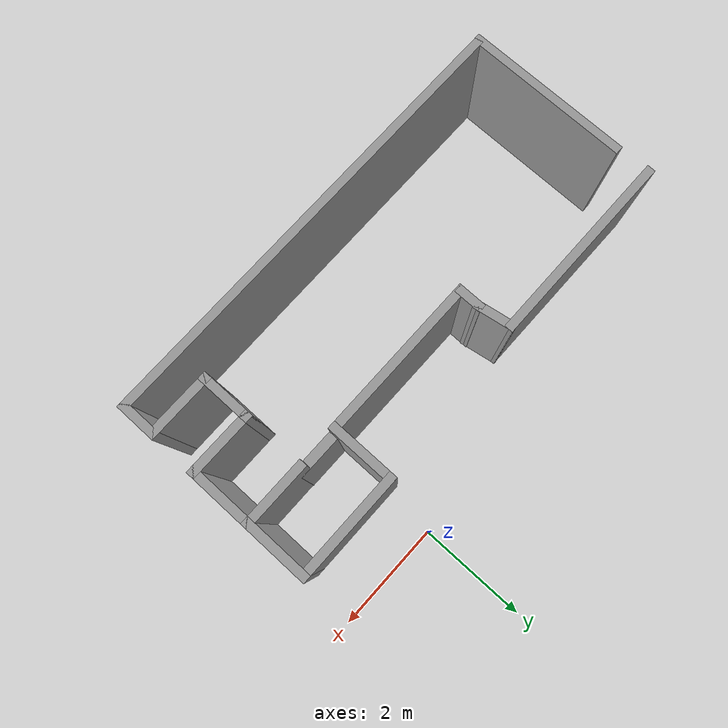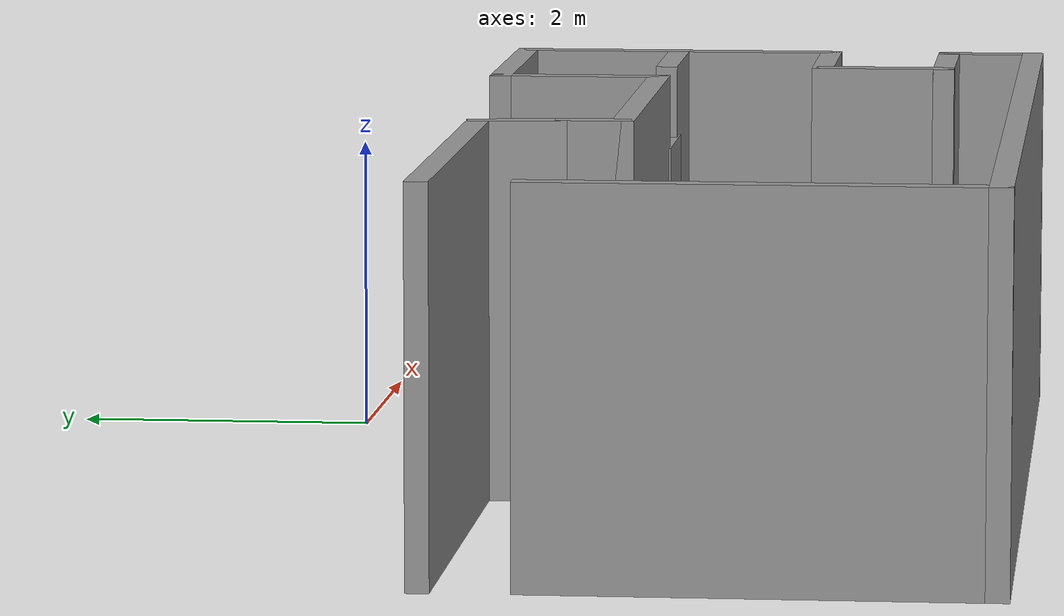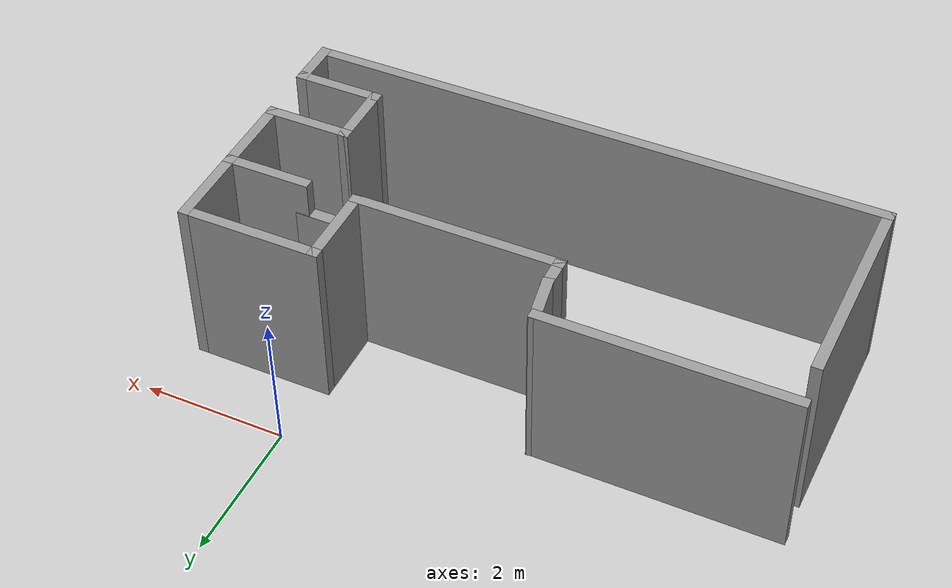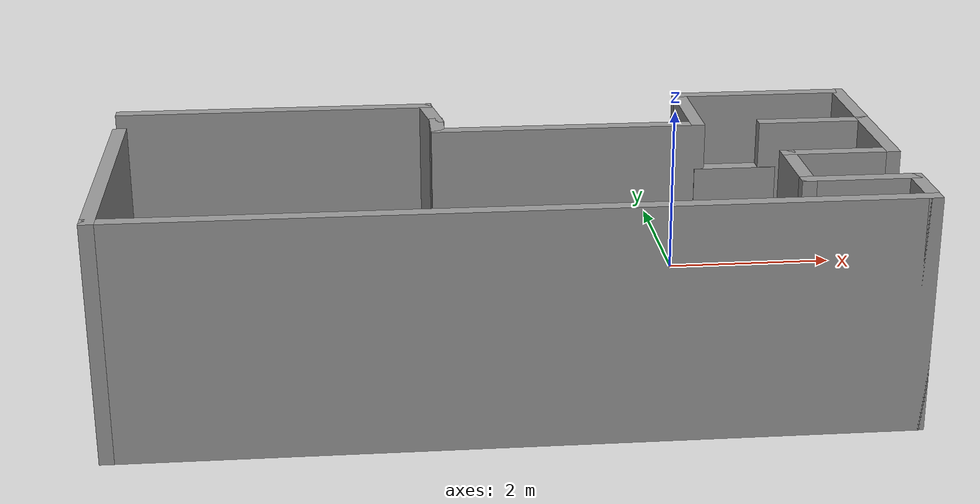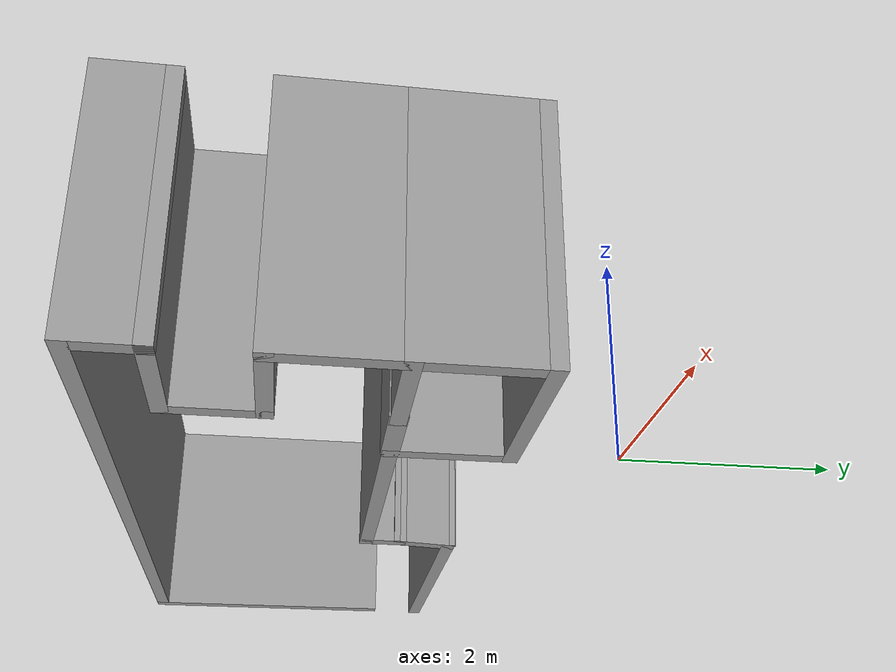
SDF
<?xml version='1.0'?>
<sdf version='1.6'>
  <model name='building'>
    <pose frame=''>-2.35769 -2.79793 0 0 -0 0</pose>
    <link name='Door_0'>
      <collision name='Door_0_Collision'>
        <geometry>
          <box>
            <size>0.9 0.17 2</size>
          </box>
        </geometry>
        <pose frame=''>0 0 1 0 -0 0</pose>
      </collision>
      <visual name='Door_0_Visual'>
        <pose frame=''>0 0 1 0 -0 0</pose>
        <geometry>
          <box>
            <size>0.9 0.17 2</size>
          </box>
        </geometry>
        <material>
          <script>
            <uri>file://media/materials/scripts/gazebo.material</uri>
            <name>Gazebo/Grey</name>
          </script>
        </material>
      </visual>
      <pose frame=''>2.63389 0.723243 0 0 -0 0</pose>
    </link>
    <link name='Wall_13'>
      <collision name='Wall_13_Collision'>
        <geometry>
          <box>
            <size>3 0.15 2.5</size>
          </box>
        </geometry>
        <pose frame=''>0 0 1.25 0 -0 0</pose>
      </collision>
      <visual name='Wall_13_Visual'>
        <pose frame=''>0 0 1.25 0 -0 0</pose>
        <geometry>
          <box>
            <size>3 0.15 2.5</size>
          </box>
        </geometry>
        <material>
          <script>
            <uri>file://media/materials/scripts/gazebo.material</uri>
            <name>Gazebo/Grey</name>
          </script>
          <ambient>1 1 1 1</ambient>
        </material>
        <meta>
          <layer>0</layer>
        </meta>
      </visual>
      <pose frame=''>-4.03711 -0.4 0 0 -0 1.5708</pose>
    </link>
    <link name='Wall_15'>
      <collision name='Wall_15_Collision'>
        <geometry>
          <box>
            <size>8.25 0.15 2.5</size>
          </box>
        </geometry>
        <pose frame=''>0 0 1.25 0 -0 0</pose>
      </collision>
      <visual name='Wall_15_Visual'>
        <pose frame=''>0 0 1.25 0 -0 0</pose>
        <geometry>
          <box>
            <size>8.25 0.15 2.5</size>
          </box>
        </geometry>
        <material>
          <script>
            <uri>file://media/materials/scripts/gazebo.material</uri>
            <name>Gazebo/Grey</name>
          </script>
          <ambient>1 1 1 1</ambient>
        </material>
        <meta>
          <layer>0</layer>
        </meta>
      </visual>
      <pose frame=''>0.012886 -1.825 0 0 -0 0</pose>
    </link>
    <link name='Wall_16'>
      <collision name='Wall_16_Collision'>
        <geometry>
          <box>
            <size>0.75 0.15 2.5</size>
          </box>
        </geometry>
        <pose frame=''>0 0 1.25 0 -0 0</pose>
      </collision>
      <visual name='Wall_16_Visual'>
        <pose frame=''>0 0 1.25 0 -0 0</pose>
        <geometry>
          <box>
            <size>0.75 0.15 2.5</size>
          </box>
        </geometry>
        <material>
          <script>
            <uri>file://media/materials/scripts/gazebo.material</uri>
            <name>Gazebo/Grey</name>
          </script>
          <ambient>1 1 1 1</ambient>
        </material>
        <meta>
          <layer>0</layer>
        </meta>
      </visual>
      <pose frame=''>4.06289 -1.525 0 0 -0 1.5708</pose>
    </link>
    <link name='Wall_17'>
      <collision name='Wall_17_Collision'>
        <geometry>
          <box>
            <size>1.25 0.15 2.5</size>
          </box>
        </geometry>
        <pose frame=''>0 0 1.25 0 -0 0</pose>
      </collision>
      <visual name='Wall_17_Visual'>
        <pose frame=''>0 0 1.25 0 -0 0</pose>
        <geometry>
          <box>
            <size>1.25 0.15 2.5</size>
          </box>
        </geometry>
        <material>
          <script>
            <uri>file://media/materials/scripts/gazebo.material</uri>
            <name>Gazebo/Grey</name>
          </script>
          <ambient>1 1 1 1</ambient>
        </material>
        <meta>
          <layer>0</layer>
        </meta>
      </visual>
      <pose frame=''>3.51289 -1.225 0 0 -0 3.14159</pose>
    </link>
    <link name='Wall_18'>
      <collision name='Wall_18_Collision'>
        <geometry>
          <box>
            <size>1 0.15 2.5</size>
          </box>
        </geometry>
        <pose frame=''>0 0 1.25 0 -0 0</pose>
      </collision>
      <visual name='Wall_18_Visual'>
        <pose frame=''>0 0 1.25 0 -0 0</pose>
        <geometry>
          <box>
            <size>1 0.15 2.5</size>
          </box>
        </geometry>
        <material>
          <script>
            <uri>file://media/materials/scripts/gazebo.material</uri>
            <name>Gazebo/Grey</name>
          </script>
          <ambient>1 1 1 1</ambient>
        </material>
        <meta>
          <layer>0</layer>
        </meta>
      </visual>
      <pose frame=''>2.96289 -0.8 0 0 -0 1.5708</pose>
    </link>
    <link name='Wall_19'>
      <collision name='Wall_19_Collision'>
        <geometry>
          <box>
            <size>1.25 0.15 2.5</size>
          </box>
        </geometry>
        <pose frame=''>0 0 1.25 0 -0 0</pose>
      </collision>
      <visual name='Wall_19_Visual'>
        <pose frame=''>0 0 1.25 0 -0 0</pose>
        <geometry>
          <box>
            <size>1.25 0.15 2.5</size>
          </box>
        </geometry>
        <material>
          <script>
            <uri>file://media/materials/scripts/gazebo.material</uri>
            <name>Gazebo/Grey</name>
          </script>
          <ambient>1 1 1 1</ambient>
        </material>
        <meta>
          <layer>0</layer>
        </meta>
      </visual>
      <pose frame=''>3.51289 -0.375 0 0 -0 0</pose>
    </link>
    <link name='Wall_20'>
      <collision name='Wall_20_Collision'>
        <geometry>
          <box>
            <size>1.25 0.15 2.5</size>
          </box>
        </geometry>
        <pose frame=''>0 0 1.25 0 -0 0</pose>
      </collision>
      <visual name='Wall_20_Visual'>
        <pose frame=''>0 0 1.25 0 -0 0</pose>
        <geometry>
          <box>
            <size>1.25 0.15 2.5</size>
          </box>
        </geometry>
        <material>
          <script>
            <uri>file://media/materials/scripts/gazebo.material</uri>
            <name>Gazebo/Grey</name>
          </script>
          <ambient>1 1 1 1</ambient>
        </material>
        <meta>
          <layer>0</layer>
        </meta>
      </visual>
      <pose frame=''>4.06289 0.175 0 0 -0 1.5708</pose>
    </link>
    <link name='Wall_21'>
      <collision name='Wall_21_Collision'>
        <geometry>
          <box>
            <size>1.25 0.15 2.5</size>
          </box>
        </geometry>
        <pose frame=''>0 0 1.25 0 -0 0</pose>
      </collision>
      <visual name='Wall_21_Visual'>
        <pose frame=''>0 0 1.25 0 -0 0</pose>
        <geometry>
          <box>
            <size>1.25 0.15 2.5</size>
          </box>
        </geometry>
        <material>
          <script>
            <uri>file://media/materials/scripts/gazebo.material</uri>
            <name>Gazebo/Grey</name>
          </script>
          <ambient>1 1 1 1</ambient>
        </material>
        <meta>
          <layer>0</layer>
        </meta>
      </visual>
      <pose frame=''>3.51289 0.725 0 0 -0 3.14159</pose>
    </link>
    <link name='Wall_24'>
      <collision name='Wall_24_Collision'>
        <geometry>
          <box>
            <size>0.15 0.15 2.5</size>
          </box>
        </geometry>
        <pose frame=''>0 0 1.25 0 -0 0</pose>
      </collision>
      <visual name='Wall_24_Visual'>
        <pose frame=''>0 0 1.25 0 -0 0</pose>
        <geometry>
          <box>
            <size>0.15 0.15 2.5</size>
          </box>
        </geometry>
        <material>
          <script>
            <uri>file://media/materials/scripts/gazebo.material</uri>
            <name>Gazebo/Grey</name>
          </script>
          <ambient>1 1 1 1</ambient>
        </material>
        <meta>
          <layer>0</layer>
        </meta>
      </visual>
      <pose frame=''>4.06289 0.725 0 0 -0 0</pose>
    </link>
    <link name='Wall_25'>
      <collision name='Wall_25_Collision'>
        <geometry>
          <box>
            <size>1.25 0.15 2.5</size>
          </box>
        </geometry>
        <pose frame=''>0 0 1.25 0 -0 0</pose>
      </collision>
      <visual name='Wall_25_Visual'>
        <pose frame=''>0 0 1.25 0 -0 0</pose>
        <geometry>
          <box>
            <size>1.25 0.15 2.5</size>
          </box>
        </geometry>
        <material>
          <script>
            <uri>file://media/materials/scripts/gazebo.material</uri>
            <name>Gazebo/Grey</name>
          </script>
          <ambient>1 1 1 1</ambient>
        </material>
        <meta>
          <layer>0</layer>
        </meta>
      </visual>
      <pose frame=''>4.06289 1.275 0 0 -0 1.5708</pose>
    </link>
    <link name='Wall_27'>
      <collision name='Wall_27_Collision'>
        <geometry>
          <box>
            <size>2 0.15 2.5</size>
          </box>
        </geometry>
        <pose frame=''>0 0 1.25 0 -0 0</pose>
      </collision>
      <visual name='Wall_27_Visual'>
        <pose frame=''>0 0 1.25 0 -0 0</pose>
        <geometry>
          <box>
            <size>2 0.15 2.5</size>
          </box>
        </geometry>
        <material>
          <script>
            <uri>file://media/materials/scripts/gazebo.material</uri>
            <name>Gazebo/Grey</name>
          </script>
          <ambient>1 1 1 1</ambient>
        </material>
        <meta>
          <layer>0</layer>
        </meta>
      </visual>
      <pose frame=''>3.13789 1.825 0 0 -0 3.14159</pose>
    </link>
    <link name='Wall_28'>
      <collision name='Wall_28_Collision'>
        <geometry>
          <box>
            <size>1.25 0.15 2.5</size>
          </box>
        </geometry>
        <pose frame=''>0 0 1.25 0 -0 0</pose>
      </collision>
      <visual name='Wall_28_Visual'>
        <pose frame=''>0 0 1.25 0 -0 0</pose>
        <geometry>
          <box>
            <size>1.25 0.15 2.5</size>
          </box>
        </geometry>
        <material>
          <script>
            <uri>file://media/materials/scripts/gazebo.material</uri>
            <name>Gazebo/Grey</name>
          </script>
          <ambient>1 1 1 1</ambient>
        </material>
        <meta>
          <layer>0</layer>
        </meta>
      </visual>
      <pose frame=''>2.21289 1.275 0 0 0 -1.5708</pose>
    </link>
    <link name='Wall_29'>
      <collision name='Wall_29_Collision'>
        <geometry>
          <box>
            <size>2.97989 0.15 2.5</size>
          </box>
        </geometry>
        <pose frame=''>0 0 1.25 0 -0 0</pose>
      </collision>
      <visual name='Wall_29_Visual'>
        <pose frame=''>0 0 1.25 0 -0 0</pose>
        <geometry>
          <box>
            <size>2.97989 0.15 2.5</size>
          </box>
        </geometry>
        <material>
          <script>
            <uri>file://media/materials/scripts/gazebo.material</uri>
            <name>Gazebo/Grey</name>
          </script>
          <ambient>1 1 1 1</ambient>
        </material>
        <meta>
          <layer>0</layer>
        </meta>
      </visual>
      <pose frame=''>0.797943 0.725 0 0 -0 3.14159</pose>
    </link>
    <link name='Wall_30'>
      <collision name='Wall_30_Collision'>
        <geometry>
          <box>
            <size>0.5 0.15 2.5</size>
          </box>
        </geometry>
        <pose frame=''>0 0 1.25 0 -0 0</pose>
      </collision>
      <visual name='Wall_30_Visual'>
        <pose frame=''>0 0 1.25 0 -0 0</pose>
        <geometry>
          <box>
            <size>0.5 0.15 2.5</size>
          </box>
        </geometry>
        <material>
          <script>
            <uri>file://media/materials/scripts/gazebo.material</uri>
            <name>Gazebo/Grey</name>
          </script>
          <ambient>1 1 1 1</ambient>
        </material>
        <meta>
          <layer>0</layer>
        </meta>
      </visual>
      <pose frame=''>-0.617001 0.920114 0 0 -0 1.5708</pose>
    </link>
    <link name='Wall_32'>
      <collision name='Wall_32_Collision'>
        <geometry>
          <box>
            <size>3.5 0.15 2.5</size>
          </box>
        </geometry>
        <pose frame=''>0 0 1.25 0 -0 0</pose>
      </collision>
      <visual name='Wall_32_Visual'>
        <pose frame=''>0 0 1.25 0 -0 0</pose>
        <geometry>
          <box>
            <size>3.5 0.15 2.5</size>
          </box>
        </geometry>
        <material>
          <script>
            <uri>file://media/materials/scripts/gazebo.material</uri>
            <name>Gazebo/Grey</name>
          </script>
          <ambient>1 1 1 1</ambient>
        </material>
        <meta>
          <layer>0</layer>
        </meta>
      </visual>
      <pose frame=''>-2.38789 1.66447 0 0 -0 0</pose>
    </link>
    <link name='Wall_34'>
      <collision name='Wall_34_Collision'>
        <geometry>
          <box>
            <size>0.72737 0.15 2.5</size>
          </box>
        </geometry>
        <pose frame=''>0 0 1.25 0 -0 0</pose>
      </collision>
      <visual name='Wall_34_Visual'>
        <pose frame=''>0 0 1.25 0 -0 0</pose>
        <geometry>
          <box>
            <size>0.72737 0.15 2.5</size>
          </box>
        </geometry>
        <material>
          <script>
            <uri>file://media/materials/scripts/gazebo.material</uri>
            <name>Gazebo/Grey</name>
          </script>
          <ambient>1 1 1 1</ambient>
        </material>
        <meta>
          <layer>0</layer>
        </meta>
      </visual>
      <pose frame=''>-0.664943 1.37979 0 0 0 -1.40395</pose>
    </link>
    <static>1</static>
  </model>
</sdf>
